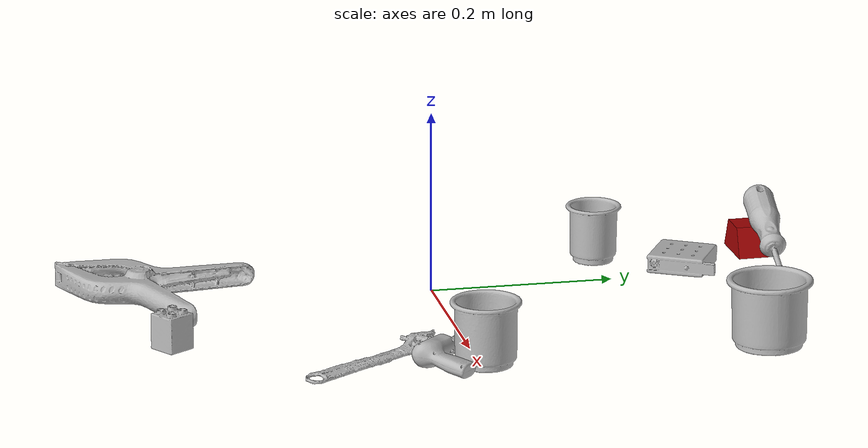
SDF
<sdf version="1.4">
  <world name="default">
    <light name="light1" type="point">
      <pose>0 0 1 0 0 0</pose>
      <diffuse>3 3 3 1</diffuse>
      <specular>3 3 3 1</specular>
    </light>
    <light name="light2" type="point">
      <pose>0 0.5 2 0 0 0</pose>
      <diffuse>1 1 1 1</diffuse>
      <specular>1 1 1 1</specular>
    </light>
    <light name="light3" type="point">
      <pose>0 0.5 2 0 0 0</pose>
      <diffuse>3 3 3 1</diffuse>
      <specular>3 3 3 1</specular>
    </light>
    <scene>
      <ambient>0.7 0.7 0.7</ambient>
    </scene>
    <model name="cup1">
      <link name="link_cup1">
        <collision name="default">
          <geometry>
            <mesh>
              <uri>model://b_cups/collision_meshes/collision.obj</uri>
              <scale>1.0 1.0 1.0</scale>
            </mesh>
          </geometry>
          <surface>
            <friction>
              <ode>
                <mu>0.5</mu>
                <mu2>0.5</mu2>
              </ode>
            </friction>
          <contact>
        <ode>
            <max_vel>0</max_vel>
            <min_depth>0.0001</min_depth>
            <kp>1e8</kp>
        </ode>
    </contact></surface>
        </collision>
        <visual name="default">
          <geometry>
            <mesh>
              <uri>model://b_cups/visual_meshes/visual.dae</uri>
              <scale>1.0 1.0 1.0</scale>
            </mesh>
          </geometry>
        </visual>
        <inertial>
          <mass>0.03190340846776962</mass>
          <pose>0.0005182004533708096 0.0018058607820421457 -0.0013381806202232838 0.11356328214070865 0.03872483993123738 -0.34569243052877063</pose>
          <inertia>
            <ixx>2.0883017e-05</ixx>
            <iyy>2.0486541e-05</iyy>
            <izz>1.7572664e-05</izz>
            <ixy>0</ixy>
            <ixz>0</ixz>
            <iyz>0</iyz>
          </inertia>
        </inertial>
      </link>
      <pose>-0.06980787962675095 0.19559666514396667 0.03199618309736252 -0.007655713690445365 -0.003787012933260386 -0.31729941633943076</pose>
    </model>
    <model name="cup2">
      <link name="link_cup2">
        <collision name="default">
          <geometry>
            <mesh>
              <uri>model://e_cups/collision_meshes/collision.obj</uri>
              <scale>1.0 1.0 1.0</scale>
            </mesh>
          </geometry>
          <surface>
            <friction>
              <ode>
                <mu>0.5</mu>
                <mu2>0.5</mu2>
              </ode>
            </friction>
          <contact>
        <ode>
            <max_vel>0</max_vel>
            <min_depth>0.0001</min_depth>
            <kp>1e8</kp>
        </ode>
    </contact></surface>
        </collision>
        <visual name="default">
          <geometry>
            <mesh>
              <uri>model://e_cups/visual_meshes/visual.dae</uri>
              <scale>1.0 1.0 1.0</scale>
            </mesh>
          </geometry>
        </visual>
        <inertial>
          <mass>0.09350046515464783</mass>
          <pose>0.0011355748865753412 0.0028797851409763098 -0.0038829720579087734 0.69524087765449 0.08767898447354379 -0.5235249697507389</pose>
          <inertia>
            <ixx>8.2444014e-05</ixx>
            <iyy>8.6165805e-05</iyy>
            <izz>7.882601e-05</izz>
            <ixy>0</ixy>
            <ixz>0</ixz>
            <iyz>0</iyz>
          </inertia>
        </inertial>
      </link>
      <pose>0.2536299526691437 0.005774303339421749 0.03559940308332443 0.00037941883822437654 -0.0004964096549980852 -1.2574629997635645</pose>
    </model>
    <model name="cup3">
      <link name="link_cup3">
        <collision name="default">
          <geometry>
            <mesh>
              <uri>model://h_cups/collision_meshes/collision.obj</uri>
              <scale>1.0 1.0 1.0</scale>
            </mesh>
          </geometry>
          <surface>
            <friction>
              <ode>
                <mu>0.5</mu>
                <mu2>0.5</mu2>
              </ode>
            </friction>
          <contact>
        <ode>
            <max_vel>0</max_vel>
            <min_depth>0.0001</min_depth>
            <kp>1e8</kp>
        </ode>
    </contact></surface>
        </collision>
        <visual name="default">
          <geometry>
            <mesh>
              <uri>model://h_cups/visual_meshes/visual.dae</uri>
              <scale>1.0 1.0 1.0</scale>
            </mesh>
          </geometry>
        </visual>
        <inertial>
          <mass>0.05626832693815231</mass>
          <pose>-2.7024709197576158e-05 0.00023018589126877487 -0.0018405396258458495 -0.02436208446622447 0.06545190020339471 0.12885609358770897</pose>
          <inertia>
            <ixx>7.2667885e-05</ixx>
            <iyy>7.180077e-05</iyy>
            <izz>7.620872e-05</izz>
            <ixy>0</ixy>
            <ixz>0</ixz>
            <iyz>0</iyz>
          </inertia>
        </inertial>
      </link>
      <pose>0.25372314453125 0.3110182583332062 0.0377579927444458 1.21850469628812e-07 -6.231741491093002e-09 -0.7234990245432104</pose>
    </model>
    <model name="toy1">
      <link name="link_toy1">
        <collision name="default">
          <geometry>
            <mesh>
              <uri>model://nine_hole_peg_test/collision_meshes/collision.obj</uri>
              <scale>0.5 0.5 0.5</scale>
            </mesh>
          </geometry>
          <surface>
            <friction>
              <ode>
                <mu>0.5</mu>
                <mu2>0.5</mu2>
              </ode>
            </friction>
          <contact>
        <ode>
            <max_vel>0</max_vel>
            <min_depth>0.0001</min_depth>
            <kp>1e8</kp>
        </ode>
    </contact></surface>
        </collision>
        <visual name="default">
          <geometry>
            <mesh>
              <uri>model://nine_hole_peg_test/visual_meshes/visual.dae</uri>
              <scale>0.5 0.5 0.5</scale>
            </mesh>
          </geometry>
        </visual>
        <inertial>
          <mass>0.06318242102861404</mass>
          <pose>-0.0023086941801011562 -0.004823808092623949 1.3230346667114645e-05 -0.0014666789322941463 0.0007194184826049595 -0.6342412444031488</pose>
          <inertia>
            <ixx>2.4699024e-05</ixx>
            <iyy>2.3061213e-05</iyy>
            <izz>4.327997e-05</izz>
            <ixy>0</ixy>
            <ixz>0</ixz>
            <iyz>0</iyz>
          </inertia>
        </inertial>
      </link>
      <pose>-0.01971094310283661 0.2886853814125061 0.010385502129793167 8.638942874295585e-09 -9.668072594604457e-09 -0.4970559820584166</pose>
    </model>
    <model name="toy2">
      <link name="link_toy2">
        <collision name="default">
          <geometry>
            <mesh>
              <uri>model://prism/collision_meshes/collision.obj</uri>
              <scale>0.5 0.5 0.5</scale>
            </mesh>
          </geometry>
          <surface>
            <friction>
              <ode>
                <mu>0.5</mu>
                <mu2>0.5</mu2>
              </ode>
            </friction>
          <contact>
        <ode>
            <max_vel>0</max_vel>
            <min_depth>0.0001</min_depth>
            <kp>1e8</kp>
        </ode>
    </contact></surface>
        </collision>
        <visual name="default">
          <geometry>
            <mesh>
              <uri>model://prism/visual_meshes/visual.dae</uri>
              <scale>0.5 0.5 0.5</scale>
            </mesh>
          </geometry>
        </visual>
        <inertial>
          <mass>0.058882199227809906</mass>
          <pose>-4.92679828312248e-05 -2.480786349678965e-07 -0.0016934550367295742 0.0 0.00655918030046738 0.0</pose>
          <inertia>
            <ixx>1.32851155e-05</ixx>
            <iyy>1.6055232e-05</iyy>
            <izz>1.9665738e-05</izz>
            <ixy>0</ixy>
            <ixz>0</ixz>
            <iyz>0</iyz>
          </inertia>
        </inertial>
      </link>
      <pose>-0.06987771391868591 0.3744080066680908 0.016085879877209663 5.818705618595547e-05 -4.175601935597934e-05 -3.107683159038997</pose>
    </model>
    <model name="toy3">
      <link name="link_toy3">
        <collision name="default">
          <geometry>
            <mesh>
              <uri>model://b_toy_airplane/collision_meshes/collision.obj</uri>
              <scale>0.5 0.5 0.5</scale>
            </mesh>
          </geometry>
          <surface>
            <friction>
              <ode>
                <mu>0.5</mu>
                <mu2>0.5</mu2>
              </ode>
            </friction>
          <contact>
        <ode>
            <max_vel>0</max_vel>
            <min_depth>0.0001</min_depth>
            <kp>1e8</kp>
        </ode>
    </contact></surface>
        </collision>
        <visual name="default">
          <geometry>
            <mesh>
              <uri>model://b_toy_airplane/visual_meshes/visual.dae</uri>
              <scale>0.5 0.5 0.5</scale>
            </mesh>
          </geometry>
        </visual>
        <inertial>
          <mass>0.06070837751030922</mass>
          <pose>0.002540682442486286 0.0020077924709767103 0.0047715334221720695 -0.040018114249042835 -0.04022179473329346 -0.5601502235260123</pose>
          <inertia>
            <ixx>2.8176557e-05</ixx>
            <iyy>1.1262445e-05</iyy>
            <izz>3.5054447e-05</izz>
            <ixy>0</ixy>
            <ixz>0</ixz>
            <iyz>0</iyz>
          </inertia>
        </inertial>
      </link>
      <pose>0.254722535610199 -0.04299392178654671 0.008441068232059479 0.17223043998703516 0.01885090782868922 2.3217554329684407</pose>
    </model>
    <model name="toy4">
      <link name="link_toy4">
        <collision name="default">
          <geometry>
            <mesh>
              <uri>model://f_lego_duplo/collision_meshes/collision.obj</uri>
              <scale>1.0 1.0 1.0</scale>
            </mesh>
          </geometry>
          <surface>
            <friction>
              <ode>
                <mu>0.5</mu>
                <mu2>0.5</mu2>
              </ode>
            </friction>
          <contact>
        <ode>
            <max_vel>0</max_vel>
            <min_depth>0.0001</min_depth>
            <kp>1e8</kp>
        </ode>
    </contact></surface>
        </collision>
        <visual name="default">
          <geometry>
            <mesh>
              <uri>model://f_lego_duplo/visual_meshes/visual.dae</uri>
              <scale>1.0 1.0 1.0</scale>
            </mesh>
          </geometry>
        </visual>
        <inertial>
          <mass>0.029542475938796997</mass>
          <pose>2.369392677792348e-05 0.00013393184053711593 0.0018837879179045558 0.029838766168002753 -0.014424835911361083 -0.6756712748416152</pose>
          <inertia>
            <ixx>6.2424897e-06</ixx>
            <iyy>6.2981026e-06</iyy>
            <izz>5.4187462e-06</izz>
            <ixy>0</ixy>
            <ixz>0</ixz>
            <iyz>0</iyz>
          </inertia>
        </inertial>
      </link>
      <pose>0.1370384395122528 -0.3064872622489929 0.02187100611627102 -8.609318881609726e-07 1.3177614216723098e-06 2.1547750621603834</pose>
    </model>
    <model name="hardware1">
      <link name="link_hardware1">
        <collision name="default">
          <geometry>
            <mesh>
              <uri>model://extra_large_clamp/collision_meshes/collision.obj</uri>
              <scale>1.0 1.0 1.0</scale>
            </mesh>
          </geometry>
          <surface>
            <friction>
              <ode>
                <mu>0.5</mu>
                <mu2>0.5</mu2>
              </ode>
            </friction>
          <contact>
        <ode>
            <max_vel>0</max_vel>
            <min_depth>0.0001</min_depth>
            <kp>1e8</kp>
        </ode>
    </contact></surface>
        </collision>
        <visual name="default">
          <geometry>
            <mesh>
              <uri>model://extra_large_clamp/visual_meshes/visual.dae</uri>
              <scale>1.0 1.0 1.0</scale>
            </mesh>
          </geometry>
        </visual>
        <inertial>
          <mass>0.20469266176223755</mass>
          <pose>0.00323202065192163 -7.615445792907849e-05 0.0003172155993524939 0.013786991356050505 -0.0005066836095273004 -0.000893628832478523</pose>
          <inertia>
            <ixx>0.00031109934</ixx>
            <iyy>0.0005356169</iyy>
            <izz>0.00081831246</izz>
            <ixy>0</ixy>
            <ixz>0</ixz>
            <iyz>0</iyz>
          </inertia>
        </inertial>
      </link>
      <pose>-0.02769285812973976 -0.3148910403251648 0.01806989125907421 -0.02437378906582385 0.0004406119710451254 -2.1620994000035094</pose>
    </model>
    <model name="hardware2">
      <link name="link_hardware2">
        <collision name="default">
          <geometry>
            <mesh>
              <uri>model://flat_screwdriver/collision_meshes/collision.obj</uri>
              <scale>1.0 1.0 1.0</scale>
            </mesh>
          </geometry>
          <surface>
            <friction>
              <ode>
                <mu>0.5</mu>
                <mu2>0.5</mu2>
              </ode>
            </friction>
          <contact>
        <ode>
            <max_vel>0</max_vel>
            <min_depth>0.0001</min_depth>
            <kp>1e8</kp>
        </ode>
    </contact></surface>
        </collision>
        <visual name="default">
          <geometry>
            <mesh>
              <uri>model://flat_screwdriver/visual_meshes/visual.dae</uri>
              <scale>1.0 1.0 1.0</scale>
            </mesh>
          </geometry>
        </visual>
        <inertial>
          <mass>0.09510745853185654</mass>
          <pose>-0.048918697983026505 -0.0006576799787580967 -0.000614091579336673 -0.5614762322958965 -0.003233723970645699 0.006982278511552064</pose>
          <inertia>
            <ixx>1.1236876e-05</ixx>
            <iyy>0.00014265477</iyy>
            <izz>0.00014258873</izz>
            <ixy>0</ixy>
            <ixz>0</ixz>
            <iyz>0</iyz>
          </inertia>
        </inertial>
      </link>
      <pose>0.01143161952495575 0.3789944052696228 0.030729131773114204 -0.23597770354173275 0.29096541385201213 -0.07553899990449242</pose>
    </model>
    <model name="hardware3">
      <link name="link_hardware3">
        <collision name="default">
          <geometry>
            <mesh>
              <uri>model://adjustable_wrench/collision_meshes/collision.obj</uri>
              <scale>1.0 1.0 1.0</scale>
            </mesh>
          </geometry>
          <surface>
            <friction>
              <ode>
                <mu>0.5</mu>
                <mu2>0.5</mu2>
              </ode>
            </friction>
          <contact>
        <ode>
            <max_vel>0</max_vel>
            <min_depth>0.0001</min_depth>
            <kp>1e8</kp>
        </ode>
    </contact></surface>
        </collision>
        <visual name="default">
          <geometry>
            <mesh>
              <uri>model://adjustable_wrench/visual_meshes/visual.dae</uri>
              <scale>1.0 1.0 1.0</scale>
            </mesh>
          </geometry>
        </visual>
        <inertial>
          <mass>0.02741360291838646</mass>
          <pose>0.03740980476140976 -0.002896887017413974 -0.0011149230413138866 -0.0144733350781748 0.006656025939833136 -0.010954202845362587</pose>
          <inertia>
            <ixx>5.610589e-06</ixx>
            <iyy>6.5665416e-05</iyy>
            <izz>7.0977985e-05</izz>
            <ixy>0</ixy>
            <ixz>0</ixz>
            <iyz>0</iyz>
          </inertia>
        </inertial>
      </link>
      <pose>0.22128066420555115 -0.09652732312679291 0.006125038489699364 0.04675907373876003 -0.029270628567383467 2.0694731066552325</pose>
    </model>
  <physics type="ode">
      <max_contacts>50</max_contacts>
      <ode>
        <solver>
          <type>quick</type>
          <iters>75</iters>
        </solver>
        <constraints>
          <contact_max_correcting_vel>0</contact_max_correcting_vel>
          <contact_surface_layer>0</contact_surface_layer>
        </constraints>
      </ode>
    </physics></world>
</sdf>
